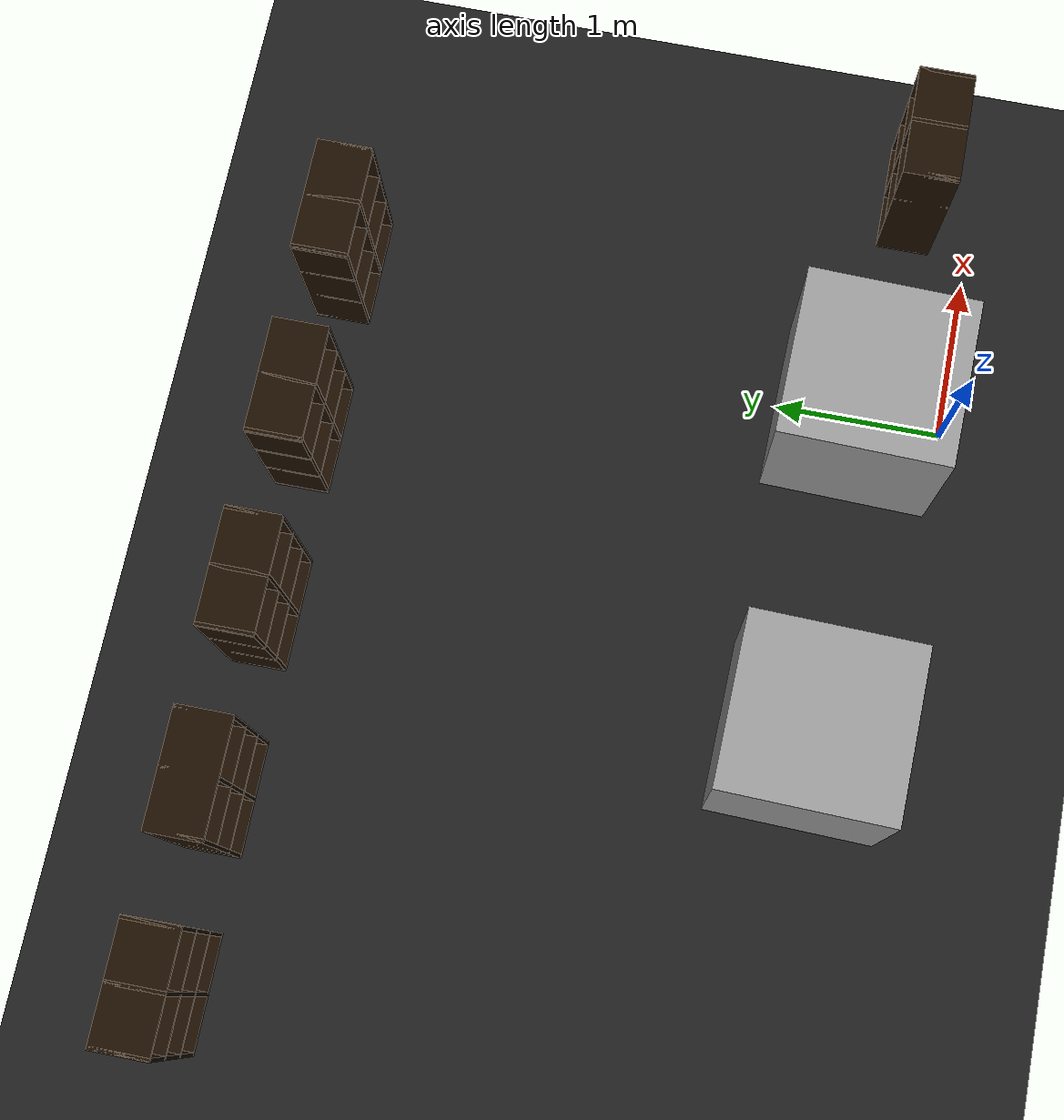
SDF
<sdf version="1.7">
 <world name="default">
  <model name="ground_plane">
   <static>1</static>
   <link name="link">
    <collision name="collision">
     <geometry><plane><normal>0 0 1</normal><size>100 100</size></plane></geometry>
     <surface><friction><ode><mu>100</mu><mu2>50</mu2></ode></friction></surface>
    </collision>
    <visual name="visual">
     <cast_shadows>0</cast_shadows>
     <geometry><plane><normal>0 0 1</normal><size>100 100</size></plane></geometry>
     <material>
      <script><uri>file://media/materials/scripts/gazebo.material</uri><name>Gazebo/BlackTransparent</name></script>
     </material>
    </visual>
   </link>
  </model>
  <model name="unit_box_17">
   <pose>-2.00747 0.514388 0.5 0 -0 -0.025074</pose>
   <link name="link">
    <inertial>
     <mass>1</mass>
     <inertia>
      <ixx>0.166667</ixx>
      <ixy>0</ixy>
      <ixz>0</ixz>
      <iyy>0.166667</iyy>
      <iyz>0</iyz>
      <izz>0.166667</izz>
     </inertia>
    </inertial>
    <collision name="collision"><geometry><box><size>1 1 1</size></box></geometry></collision>
    <visual name="visual">
     <geometry><box><size>1 1 1</size></box></geometry>
     <material>
      <script><name>Gazebo/Grey</name><uri>file://media/materials/scripts/gazebo.material</uri></script>
     </material>
    </visual>
   </link>
  </model>
  <model name="unit_box_18">
   <pose>-0.006792 0.511793 0.5 0 0 -0.025171</pose>
   <link name="link">
    <inertial>
     <mass>1</mass>
     <inertia>
      <ixx>0.166667</ixx>
      <ixy>0</ixy>
      <ixz>0</ixz>
      <iyy>0.166667</iyy>
      <iyz>0</iyz>
      <izz>0.166667</izz>
     </inertia>
    </inertial>
    <collision name="collision"><geometry><box><size>1 1 1</size></box></geometry></collision>
    <visual name="visual">
     <geometry><box><size>1 1 1</size></box></geometry>
     <material>
      <script><name>Gazebo/Grey</name><uri>file://media/materials/scripts/gazebo.material</uri></script>
     </material>
    </visual>
   </link>
  </model>
  <model name="6_Cube_StorageE_clone_20">
   <link name="Wall_0">
    <pose>0 0 0.01 0 -0 0</pose>
    <inertial>
     <mass>1.6201</mass>
     <inertia><ixx>0.0119</ixx><iyy>0.0631</iyy><izz>0.0513</izz><ixy>0</ixy><ixz>0</ixz><iyz>0</iyz></inertia>
    </inertial>
    <collision name="Wall_0_Collision"><geometry><box><size>0.616 0.296 0.02</size></box></geometry></collision>
    <visual name="Wall_0_Visual">
     <geometry><box><size>0.616 0.296 0.02</size></box></geometry>
     <material>
      <script><uri>file://media/materials/scripts/gazebo.material</uri><name>Gazebo/Grey</name></script>
      <ambient>0.105882 0.0509804 0 1</ambient>
     </material>
    </visual>
   </link>
   <joint name="0_2" type="fixed">
    <pose>-0.308 0 0 0 -0 0</pose>
    <parent>Wall_2</parent>
    <child>Wall_0</child>
    <axis><xyz>1 0 0</xyz><limit><lower>-1e+16</lower><upper>1e+16</upper></limit></axis>
   </joint>
   <joint name="0_12" type="fixed">
    <parent>Wall_12</parent>
    <child>Wall_0</child>
    <axis><xyz>0 0 1</xyz><limit><lower>-1e+16</lower><upper>1e+16</upper></limit></axis>
   </joint>
   <joint name="0_4" type="fixed">
    <pose>0.308 0 0 0 -0 0</pose>
    <parent>Wall_4</parent>
    <child>Wall_0</child>
    <axis><xyz>1 0 0</xyz><limit><lower>-1e+16</lower><upper>1e+16</upper></limit></axis>
   </joint>
   <link name="Wall_10">
    <pose>0 0 0.61 0 -0 0</pose>
    <inertial>
     <mass>1.6201</mass>
     <inertia><ixx>0.0119</ixx><iyy>0.0631</iyy><izz>0.0513</izz><ixy>0</ixy><ixz>0</ixz><iyz>0</iyz></inertia>
    </inertial>
    <collision name="Wall_10_Collision"><geometry><box><size>0.616 0.296 0.02</size></box></geometry></collision>
    <visual name="Wall_10_Visual">
     <geometry><box><size>0.616 0.296 0.02</size></box></geometry>
     <material>
      <script><uri>file://media/materials/scripts/gazebo.material</uri><name>Gazebo/Grey</name></script>
      <ambient>0.105882 0.0509804 0 1</ambient>
     </material>
    </visual>
   </link>
   <joint name="10_2" type="fixed">
    <pose>-0.308 0 0 0 -0 0</pose>
    <parent>Wall_2</parent>
    <child>Wall_10</child>
    <axis><xyz>1 0 0</xyz><limit><lower>-1e+16</lower><upper>1e+16</upper></limit></axis>
   </joint>
   <joint name="10_12" type="fixed">
    <parent>Wall_12</parent>
    <child>Wall_10</child>
    <axis><xyz>0 0 1</xyz><limit><lower>-1e+16</lower><upper>1e+16</upper></limit></axis>
   </joint>
   <joint name="10_4" type="fixed">
    <pose>0.308 0 0 0 -0 0</pose>
    <parent>Wall_4</parent>
    <child>Wall_10</child>
    <axis><xyz>1 0 0</xyz><limit><lower>-1e+16</lower><upper>1e+16</upper></limit></axis>
   </joint>
   <link name="Wall_12">
    <pose>0 0 0.4575 0 -0 0</pose>
    <inertial>
     <mass>2.4065</mass>
     <inertia><ixx>0.0177</ixx><iyy>0.1855</iyy><izz>0.168</izz><ixy>0</ixy><ixz>0</ixz><iyz>0</iyz></inertia>
    </inertial>
    <collision name="Wall_12_Collision"><geometry><box><size>0.02 0.296 0.915</size></box></geometry></collision>
    <visual name="Wall_12_Visual">
     <geometry><box><size>0.02 0.296 0.915</size></box></geometry>
     <material>
      <script><uri>file://media/materials/scripts/gazebo.material</uri><name>Gazebo/Grey</name></script>
      <ambient>0.105882 0.0509804 0 1</ambient>
     </material>
    </visual>
   </link>
   <link name="Wall_2">
    <pose>-0.298 0 0.4575 0 -0 0</pose>
    <inertial>
     <mass>2.4065</mass>
     <inertia><ixx>0.0177</ixx><iyy>0.1855</iyy><izz>0.168</izz><ixy>0</ixy><ixz>0</ixz><iyz>0</iyz></inertia>
    </inertial>
    <collision name="Wall_2_Collision"><geometry><box><size>0.02 0.296 0.915</size></box></geometry></collision>
    <visual name="Wall_2_Visual">
     <geometry><box><size>0.02 0.296 0.915</size></box></geometry>
     <material>
      <script><uri>file://media/materials/scripts/gazebo.material</uri><name>Gazebo/Grey</name></script>
      <ambient>0.105882 0.0509804 0 1</ambient>
     </material>
    </visual>
   </link>
   <link name="Wall_4">
    <pose>0.298 0 0.4575 0 -0 0</pose>
    <inertial>
     <mass>2.4065</mass>
     <inertia><ixx>0.0177</ixx><iyy>0.1855</iyy><izz>0.168</izz><ixy>0</ixy><ixz>0</ixz><iyz>0</iyz></inertia>
    </inertial>
    <collision name="Wall_4_Collision"><geometry><box><size>0.02 0.296 0.915</size></box></geometry></collision>
    <visual name="Wall_4_Visual">
     <geometry><box><size>0.02 0.296 0.915</size></box></geometry>
     <material>
      <script><uri>file://media/materials/scripts/gazebo.material</uri><name>Gazebo/Grey</name></script>
      <ambient>0.105882 0.0509804 0 1</ambient>
     </material>
    </visual>
   </link>
   <link name="Wall_6">
    <pose>0 0 0.905 0 -0 0</pose>
    <inertial>
     <mass>1.6201</mass>
     <inertia><ixx>0.0119</ixx><iyy>0.0631</iyy><izz>0.0513</izz><ixy>0</ixy><ixz>0</ixz><iyz>0</iyz></inertia>
    </inertial>
    <collision name="Wall_6_Collision"><geometry><box><size>0.616 0.296 0.02</size></box></geometry></collision>
    <visual name="Wall_6_Visual">
     <geometry><box><size>0.616 0.296 0.02</size></box></geometry>
     <material>
      <script><uri>file://media/materials/scripts/gazebo.material</uri><name>Gazebo/Grey</name></script>
      <ambient>0.105882 0.0509804 0 1</ambient>
     </material>
    </visual>
   </link>
   <joint name="6_2" type="fixed">
    <pose>-0.308 0 0 0 -0 0</pose>
    <parent>Wall_2</parent>
    <child>Wall_6</child>
    <axis><xyz>2 0 0</xyz><limit><lower>-1e+16</lower><upper>1e+16</upper></limit></axis>
   </joint>
   <joint name="6_12" type="fixed">
    <parent>Wall_12</parent>
    <child>Wall_6</child>
    <axis><xyz>0 0 1</xyz><limit><lower>-1e+16</lower><upper>1e+16</upper></limit></axis>
   </joint>
   <joint name="6_4" type="fixed">
    <pose>0.308 0 0 0 -0 0</pose>
    <parent>Wall_4</parent>
    <child>Wall_6</child>
    <axis><xyz>1 0 0</xyz><limit><lower>-1e+16</lower><upper>1e+16</upper></limit></axis>
   </joint>
   <link name="Wall_8">
    <pose>0 0 0.305 0 -0 0</pose>
    <inertial>
     <mass>1.6201</mass>
     <inertia><ixx>0.0119</ixx><iyy>0.0631</iyy><izz>0.0513</izz><ixy>0</ixy><ixz>0</ixz><iyz>0</iyz></inertia>
    </inertial>
    <collision name="Wall_8_Collision"><geometry><box><size>0.616 0.296 0.02</size></box></geometry></collision>
    <visual name="Wall_8_Visual">
     <geometry><box><size>0.616 0.296 0.02</size></box></geometry>
     <material>
      <script><uri>file://media/materials/scripts/gazebo.material</uri><name>Gazebo/Grey</name></script>
      <ambient>0.105882 0.0509804 0 1</ambient>
     </material>
    </visual>
   </link>
   <joint name="8_2" type="fixed">
    <pose>-0.308 0 0 0 -0 0</pose>
    <parent>Wall_2</parent>
    <child>Wall_8</child>
    <axis><xyz>1 0 0</xyz><limit><lower>-1e+16</lower><upper>1e+16</upper></limit></axis>
   </joint>
   <joint name="8_12" type="fixed">
    <parent>Wall_12</parent>
    <child>Wall_8</child>
    <axis><xyz>0 0 1</xyz><limit><lower>-1e+16</lower><upper>1e+16</upper></limit></axis>
   </joint>
   <joint name="8_4" type="fixed">
    <pose>0.308 0 0 0 -0 0</pose>
    <parent>Wall_4</parent>
    <child>Wall_8</child>
    <axis><xyz>1 0 0</xyz><limit><lower>-1e+16</lower><upper>1e+16</upper></limit></axis>
   </joint>
   <static>1</static>
   <pose>0 3.5 1.01 0 -0 0</pose>
  </model>
  <model name="6_Cube_StorageE_clone_21">
   <link name="Wall_0">
    <pose>0 0 0.01 0 -0 0</pose>
    <inertial>
     <mass>1.6201</mass>
     <inertia><ixx>0.0119</ixx><iyy>0.0631</iyy><izz>0.0513</izz><ixy>0</ixy><ixz>0</ixz><iyz>0</iyz></inertia>
    </inertial>
    <collision name="Wall_0_Collision"><geometry><box><size>0.616 0.296 0.02</size></box></geometry></collision>
    <visual name="Wall_0_Visual">
     <geometry><box><size>0.616 0.296 0.02</size></box></geometry>
     <material>
      <script><uri>file://media/materials/scripts/gazebo.material</uri><name>Gazebo/Grey</name></script>
      <ambient>0.105882 0.0509804 0 1</ambient>
     </material>
    </visual>
   </link>
   <joint name="0_2" type="fixed">
    <pose>-0.308 0 0 0 -0 0</pose>
    <parent>Wall_2</parent>
    <child>Wall_0</child>
    <axis><xyz>1 0 0</xyz><limit><lower>-1e+16</lower><upper>1e+16</upper></limit></axis>
   </joint>
   <joint name="0_12" type="fixed">
    <parent>Wall_12</parent>
    <child>Wall_0</child>
    <axis><xyz>0 0 1</xyz><limit><lower>-1e+16</lower><upper>1e+16</upper></limit></axis>
   </joint>
   <joint name="0_4" type="fixed">
    <pose>0.308 0 0 0 -0 0</pose>
    <parent>Wall_4</parent>
    <child>Wall_0</child>
    <axis><xyz>1 0 0</xyz><limit><lower>-1e+16</lower><upper>1e+16</upper></limit></axis>
   </joint>
   <link name="Wall_10">
    <pose>0 0 0.61 0 -0 0</pose>
    <inertial>
     <mass>1.6201</mass>
     <inertia><ixx>0.0119</ixx><iyy>0.0631</iyy><izz>0.0513</izz><ixy>0</ixy><ixz>0</ixz><iyz>0</iyz></inertia>
    </inertial>
    <collision name="Wall_10_Collision"><geometry><box><size>0.616 0.296 0.02</size></box></geometry></collision>
    <visual name="Wall_10_Visual">
     <geometry><box><size>0.616 0.296 0.02</size></box></geometry>
     <material>
      <script><uri>file://media/materials/scripts/gazebo.material</uri><name>Gazebo/Grey</name></script>
      <ambient>0.105882 0.0509804 0 1</ambient>
     </material>
    </visual>
   </link>
   <joint name="10_2" type="fixed">
    <pose>-0.308 0 0 0 -0 0</pose>
    <parent>Wall_2</parent>
    <child>Wall_10</child>
    <axis><xyz>1 0 0</xyz><limit><lower>-1e+16</lower><upper>1e+16</upper></limit></axis>
   </joint>
   <joint name="10_12" type="fixed">
    <parent>Wall_12</parent>
    <child>Wall_10</child>
    <axis><xyz>0 0 1</xyz><limit><lower>-1e+16</lower><upper>1e+16</upper></limit></axis>
   </joint>
   <joint name="10_4" type="fixed">
    <pose>0.308 0 0 0 -0 0</pose>
    <parent>Wall_4</parent>
    <child>Wall_10</child>
    <axis><xyz>1 0 0</xyz><limit><lower>-1e+16</lower><upper>1e+16</upper></limit></axis>
   </joint>
   <link name="Wall_12">
    <pose>0 0 0.4575 0 -0 0</pose>
    <inertial>
     <mass>2.4065</mass>
     <inertia><ixx>0.0177</ixx><iyy>0.1855</iyy><izz>0.168</izz><ixy>0</ixy><ixz>0</ixz><iyz>0</iyz></inertia>
    </inertial>
    <collision name="Wall_12_Collision"><geometry><box><size>0.02 0.296 0.915</size></box></geometry></collision>
    <visual name="Wall_12_Visual">
     <geometry><box><size>0.02 0.296 0.915</size></box></geometry>
     <material>
      <script><uri>file://media/materials/scripts/gazebo.material</uri><name>Gazebo/Grey</name></script>
      <ambient>0.105882 0.0509804 0 1</ambient>
     </material>
    </visual>
   </link>
   <link name="Wall_2">
    <pose>-0.298 0 0.4575 0 -0 0</pose>
    <inertial>
     <mass>2.4065</mass>
     <inertia><ixx>0.0177</ixx><iyy>0.1855</iyy><izz>0.168</izz><ixy>0</ixy><ixz>0</ixz><iyz>0</iyz></inertia>
    </inertial>
    <collision name="Wall_2_Collision"><geometry><box><size>0.02 0.296 0.915</size></box></geometry></collision>
    <visual name="Wall_2_Visual">
     <geometry><box><size>0.02 0.296 0.915</size></box></geometry>
     <material>
      <script><uri>file://media/materials/scripts/gazebo.material</uri><name>Gazebo/Grey</name></script>
      <ambient>0.105882 0.0509804 0 1</ambient>
     </material>
    </visual>
   </link>
   <link name="Wall_4">
    <pose>0.298 0 0.4575 0 -0 0</pose>
    <inertial>
     <mass>2.4065</mass>
     <inertia><ixx>0.0177</ixx><iyy>0.1855</iyy><izz>0.168</izz><ixy>0</ixy><ixz>0</ixz><iyz>0</iyz></inertia>
    </inertial>
    <collision name="Wall_4_Collision"><geometry><box><size>0.02 0.296 0.915</size></box></geometry></collision>
    <visual name="Wall_4_Visual">
     <geometry><box><size>0.02 0.296 0.915</size></box></geometry>
     <material>
      <script><uri>file://media/materials/scripts/gazebo.material</uri><name>Gazebo/Grey</name></script>
      <ambient>0.105882 0.0509804 0 1</ambient>
     </material>
    </visual>
   </link>
   <link name="Wall_6">
    <pose>0 0 0.905 0 -0 0</pose>
    <inertial>
     <mass>1.6201</mass>
     <inertia><ixx>0.0119</ixx><iyy>0.0631</iyy><izz>0.0513</izz><ixy>0</ixy><ixz>0</ixz><iyz>0</iyz></inertia>
    </inertial>
    <collision name="Wall_6_Collision"><geometry><box><size>0.616 0.296 0.02</size></box></geometry></collision>
    <visual name="Wall_6_Visual">
     <geometry><box><size>0.616 0.296 0.02</size></box></geometry>
     <material>
      <script><uri>file://media/materials/scripts/gazebo.material</uri><name>Gazebo/Grey</name></script>
      <ambient>0.105882 0.0509804 0 1</ambient>
     </material>
    </visual>
   </link>
   <joint name="6_2" type="fixed">
    <pose>-0.308 0 0 0 -0 0</pose>
    <parent>Wall_2</parent>
    <child>Wall_6</child>
    <axis><xyz>2 0 0</xyz><limit><lower>-1e+16</lower><upper>1e+16</upper></limit></axis>
   </joint>
   <joint name="6_12" type="fixed">
    <parent>Wall_12</parent>
    <child>Wall_6</child>
    <axis><xyz>0 0 1</xyz><limit><lower>-1e+16</lower><upper>1e+16</upper></limit></axis>
   </joint>
   <joint name="6_4" type="fixed">
    <pose>0.308 0 0 0 -0 0</pose>
    <parent>Wall_4</parent>
    <child>Wall_6</child>
    <axis><xyz>1 0 0</xyz><limit><lower>-1e+16</lower><upper>1e+16</upper></limit></axis>
   </joint>
   <link name="Wall_8">
    <pose>0 0 0.305 0 -0 0</pose>
    <inertial>
     <mass>1.6201</mass>
     <inertia><ixx>0.0119</ixx><iyy>0.0631</iyy><izz>0.0513</izz><ixy>0</ixy><ixz>0</ixz><iyz>0</iyz></inertia>
    </inertial>
    <collision name="Wall_8_Collision"><geometry><box><size>0.616 0.296 0.02</size></box></geometry></collision>
    <visual name="Wall_8_Visual">
     <geometry><box><size>0.616 0.296 0.02</size></box></geometry>
     <material>
      <script><uri>file://media/materials/scripts/gazebo.material</uri><name>Gazebo/Grey</name></script>
      <ambient>0.105882 0.0509804 0 1</ambient>
     </material>
    </visual>
   </link>
   <joint name="8_2" type="fixed">
    <pose>-0.308 0 0 0 -0 0</pose>
    <parent>Wall_2</parent>
    <child>Wall_8</child>
    <axis><xyz>1 0 0</xyz><limit><lower>-1e+16</lower><upper>1e+16</upper></limit></axis>
   </joint>
   <joint name="8_12" type="fixed">
    <parent>Wall_12</parent>
    <child>Wall_8</child>
    <axis><xyz>0 0 1</xyz><limit><lower>-1e+16</lower><upper>1e+16</upper></limit></axis>
   </joint>
   <joint name="8_4" type="fixed">
    <pose>0.308 0 0 0 -0 0</pose>
    <parent>Wall_4</parent>
    <child>Wall_8</child>
    <axis><xyz>1 0 0</xyz><limit><lower>-1e+16</lower><upper>1e+16</upper></limit></axis>
   </joint>
   <static>1</static>
   <pose>-1 3.5 1.01 0 -0 0</pose>
  </model>
  <model name="6_Cube_StorageE_clone_22">
   <link name="Wall_0">
    <pose>0 0 0.01 0 -0 0</pose>
    <inertial>
     <mass>1.6201</mass>
     <inertia><ixx>0.0119</ixx><iyy>0.0631</iyy><izz>0.0513</izz><ixy>0</ixy><ixz>0</ixz><iyz>0</iyz></inertia>
    </inertial>
    <collision name="Wall_0_Collision"><geometry><box><size>0.616 0.296 0.02</size></box></geometry></collision>
    <visual name="Wall_0_Visual">
     <geometry><box><size>0.616 0.296 0.02</size></box></geometry>
     <material>
      <script><uri>file://media/materials/scripts/gazebo.material</uri><name>Gazebo/Grey</name></script>
      <ambient>0.105882 0.0509804 0 1</ambient>
     </material>
    </visual>
   </link>
   <joint name="0_2" type="fixed">
    <pose>-0.308 0 0 0 -0 0</pose>
    <parent>Wall_2</parent>
    <child>Wall_0</child>
    <axis><xyz>1 0 0</xyz><limit><lower>-1e+16</lower><upper>1e+16</upper></limit></axis>
   </joint>
   <joint name="0_12" type="fixed">
    <parent>Wall_12</parent>
    <child>Wall_0</child>
    <axis><xyz>0 0 1</xyz><limit><lower>-1e+16</lower><upper>1e+16</upper></limit></axis>
   </joint>
   <joint name="0_4" type="fixed">
    <pose>0.308 0 0 0 -0 0</pose>
    <parent>Wall_4</parent>
    <child>Wall_0</child>
    <axis><xyz>1 0 0</xyz><limit><lower>-1e+16</lower><upper>1e+16</upper></limit></axis>
   </joint>
   <link name="Wall_10">
    <pose>0 0 0.61 0 -0 0</pose>
    <inertial>
     <mass>1.6201</mass>
     <inertia><ixx>0.0119</ixx><iyy>0.0631</iyy><izz>0.0513</izz><ixy>0</ixy><ixz>0</ixz><iyz>0</iyz></inertia>
    </inertial>
    <collision name="Wall_10_Collision"><geometry><box><size>0.616 0.296 0.02</size></box></geometry></collision>
    <visual name="Wall_10_Visual">
     <geometry><box><size>0.616 0.296 0.02</size></box></geometry>
     <material>
      <script><uri>file://media/materials/scripts/gazebo.material</uri><name>Gazebo/Grey</name></script>
      <ambient>0.105882 0.0509804 0 1</ambient>
     </material>
    </visual>
   </link>
   <joint name="10_2" type="fixed">
    <pose>-0.308 0 0 0 -0 0</pose>
    <parent>Wall_2</parent>
    <child>Wall_10</child>
    <axis><xyz>1 0 0</xyz><limit><lower>-1e+16</lower><upper>1e+16</upper></limit></axis>
   </joint>
   <joint name="10_12" type="fixed">
    <parent>Wall_12</parent>
    <child>Wall_10</child>
    <axis><xyz>0 0 1</xyz><limit><lower>-1e+16</lower><upper>1e+16</upper></limit></axis>
   </joint>
   <joint name="10_4" type="fixed">
    <pose>0.308 0 0 0 -0 0</pose>
    <parent>Wall_4</parent>
    <child>Wall_10</child>
    <axis><xyz>1 0 0</xyz><limit><lower>-1e+16</lower><upper>1e+16</upper></limit></axis>
   </joint>
   <link name="Wall_12">
    <pose>0 0 0.4575 0 -0 0</pose>
    <inertial>
     <mass>2.4065</mass>
     <inertia><ixx>0.0177</ixx><iyy>0.1855</iyy><izz>0.168</izz><ixy>0</ixy><ixz>0</ixz><iyz>0</iyz></inertia>
    </inertial>
    <collision name="Wall_12_Collision"><geometry><box><size>0.02 0.296 0.915</size></box></geometry></collision>
    <visual name="Wall_12_Visual">
     <geometry><box><size>0.02 0.296 0.915</size></box></geometry>
     <material>
      <script><uri>file://media/materials/scripts/gazebo.material</uri><name>Gazebo/Grey</name></script>
      <ambient>0.105882 0.0509804 0 1</ambient>
     </material>
    </visual>
   </link>
   <link name="Wall_2">
    <pose>-0.298 0 0.4575 0 -0 0</pose>
    <inertial>
     <mass>2.4065</mass>
     <inertia><ixx>0.0177</ixx><iyy>0.1855</iyy><izz>0.168</izz><ixy>0</ixy><ixz>0</ixz><iyz>0</iyz></inertia>
    </inertial>
    <collision name="Wall_2_Collision"><geometry><box><size>0.02 0.296 0.915</size></box></geometry></collision>
    <visual name="Wall_2_Visual">
     <geometry><box><size>0.02 0.296 0.915</size></box></geometry>
     <material>
      <script><uri>file://media/materials/scripts/gazebo.material</uri><name>Gazebo/Grey</name></script>
      <ambient>0.105882 0.0509804 0 1</ambient>
     </material>
    </visual>
   </link>
   <link name="Wall_4">
    <pose>0.298 0 0.4575 0 -0 0</pose>
    <inertial>
     <mass>2.4065</mass>
     <inertia><ixx>0.0177</ixx><iyy>0.1855</iyy><izz>0.168</izz><ixy>0</ixy><ixz>0</ixz><iyz>0</iyz></inertia>
    </inertial>
    <collision name="Wall_4_Collision"><geometry><box><size>0.02 0.296 0.915</size></box></geometry></collision>
    <visual name="Wall_4_Visual">
     <geometry><box><size>0.02 0.296 0.915</size></box></geometry>
     <material>
      <script><uri>file://media/materials/scripts/gazebo.material</uri><name>Gazebo/Grey</name></script>
      <ambient>0.105882 0.0509804 0 1</ambient>
     </material>
    </visual>
   </link>
   <link name="Wall_6">
    <pose>0 0 0.905 0 -0 0</pose>
    <inertial>
     <mass>1.6201</mass>
     <inertia><ixx>0.0119</ixx><iyy>0.0631</iyy><izz>0.0513</izz><ixy>0</ixy><ixz>0</ixz><iyz>0</iyz></inertia>
    </inertial>
    <collision name="Wall_6_Collision"><geometry><box><size>0.616 0.296 0.02</size></box></geometry></collision>
    <visual name="Wall_6_Visual">
     <geometry><box><size>0.616 0.296 0.02</size></box></geometry>
     <material>
      <script><uri>file://media/materials/scripts/gazebo.material</uri><name>Gazebo/Grey</name></script>
      <ambient>0.105882 0.0509804 0 1</ambient>
     </material>
    </visual>
   </link>
   <joint name="6_2" type="fixed">
    <pose>-0.308 0 0 0 -0 0</pose>
    <parent>Wall_2</parent>
    <child>Wall_6</child>
    <axis><xyz>2 0 0</xyz><limit><lower>-1e+16</lower><upper>1e+16</upper></limit></axis>
   </joint>
   <joint name="6_12" type="fixed">
    <parent>Wall_12</parent>
    <child>Wall_6</child>
    <axis><xyz>0 0 1</xyz><limit><lower>-1e+16</lower><upper>1e+16</upper></limit></axis>
   </joint>
   <joint name="6_4" type="fixed">
    <pose>0.308 0 0 0 -0 0</pose>
    <parent>Wall_4</parent>
    <child>Wall_6</child>
    <axis><xyz>1 0 0</xyz><limit><lower>-1e+16</lower><upper>1e+16</upper></limit></axis>
   </joint>
   <link name="Wall_8">
    <pose>0 0 0.305 0 -0 0</pose>
    <inertial>
     <mass>1.6201</mass>
     <inertia><ixx>0.0119</ixx><iyy>0.0631</iyy><izz>0.0513</izz><ixy>0</ixy><ixz>0</ixz><iyz>0</iyz></inertia>
    </inertial>
    <collision name="Wall_8_Collision"><geometry><box><size>0.616 0.296 0.02</size></box></geometry></collision>
    <visual name="Wall_8_Visual">
     <geometry><box><size>0.616 0.296 0.02</size></box></geometry>
     <material>
      <script><uri>file://media/materials/scripts/gazebo.material</uri><name>Gazebo/Grey</name></script>
      <ambient>0.105882 0.0509804 0 1</ambient>
     </material>
    </visual>
   </link>
   <joint name="8_2" type="fixed">
    <pose>-0.308 0 0 0 -0 0</pose>
    <parent>Wall_2</parent>
    <child>Wall_8</child>
    <axis><xyz>1 0 0</xyz><limit><lower>-1e+16</lower><upper>1e+16</upper></limit></axis>
   </joint>
   <joint name="8_12" type="fixed">
    <parent>Wall_12</parent>
    <child>Wall_8</child>
    <axis><xyz>0 0 1</xyz><limit><lower>-1e+16</lower><upper>1e+16</upper></limit></axis>
   </joint>
   <joint name="8_4" type="fixed">
    <pose>0.308 0 0 0 -0 0</pose>
    <parent>Wall_4</parent>
    <child>Wall_8</child>
    <axis><xyz>1 0 0</xyz><limit><lower>-1e+16</lower><upper>1e+16</upper></limit></axis>
   </joint>
   <static>1</static>
   <pose>-2 3.5 1.01 0 -0 0</pose>
  </model>
  <model name="6_Cube_StorageE_clone_23">
   <link name="Wall_0">
    <pose>0 0 0.01 0 -0 0</pose>
    <inertial>
     <mass>1.6201</mass>
     <inertia><ixx>0.0119</ixx><iyy>0.0631</iyy><izz>0.0513</izz><ixy>0</ixy><ixz>0</ixz><iyz>0</iyz></inertia>
    </inertial>
    <collision name="Wall_0_Collision"><geometry><box><size>0.616 0.296 0.02</size></box></geometry></collision>
    <visual name="Wall_0_Visual">
     <geometry><box><size>0.616 0.296 0.02</size></box></geometry>
     <material>
      <script><uri>file://media/materials/scripts/gazebo.material</uri><name>Gazebo/Grey</name></script>
      <ambient>0.105882 0.0509804 0 1</ambient>
     </material>
    </visual>
   </link>
   <joint name="0_2" type="fixed">
    <pose>-0.308 0 0 0 -0 0</pose>
    <parent>Wall_2</parent>
    <child>Wall_0</child>
    <axis><xyz>1 0 0</xyz><limit><lower>-1e+16</lower><upper>1e+16</upper></limit></axis>
   </joint>
   <joint name="0_12" type="fixed">
    <parent>Wall_12</parent>
    <child>Wall_0</child>
    <axis><xyz>0 0 1</xyz><limit><lower>-1e+16</lower><upper>1e+16</upper></limit></axis>
   </joint>
   <joint name="0_4" type="fixed">
    <pose>0.308 0 0 0 -0 0</pose>
    <parent>Wall_4</parent>
    <child>Wall_0</child>
    <axis><xyz>1 0 0</xyz><limit><lower>-1e+16</lower><upper>1e+16</upper></limit></axis>
   </joint>
   <link name="Wall_10">
    <pose>0 0 0.61 0 -0 0</pose>
    <inertial>
     <mass>1.6201</mass>
     <inertia><ixx>0.0119</ixx><iyy>0.0631</iyy><izz>0.0513</izz><ixy>0</ixy><ixz>0</ixz><iyz>0</iyz></inertia>
    </inertial>
    <collision name="Wall_10_Collision"><geometry><box><size>0.616 0.296 0.02</size></box></geometry></collision>
    <visual name="Wall_10_Visual">
     <geometry><box><size>0.616 0.296 0.02</size></box></geometry>
     <material>
      <script><uri>file://media/materials/scripts/gazebo.material</uri><name>Gazebo/Grey</name></script>
      <ambient>0.105882 0.0509804 0 1</ambient>
     </material>
    </visual>
   </link>
   <joint name="10_2" type="fixed">
    <pose>-0.308 0 0 0 -0 0</pose>
    <parent>Wall_2</parent>
    <child>Wall_10</child>
    <axis><xyz>1 0 0</xyz><limit><lower>-1e+16</lower><upper>1e+16</upper></limit></axis>
   </joint>
   <joint name="10_12" type="fixed">
    <parent>Wall_12</parent>
    <child>Wall_10</child>
    <axis><xyz>0 0 1</xyz><limit><lower>-1e+16</lower><upper>1e+16</upper></limit></axis>
   </joint>
   <joint name="10_4" type="fixed">
    <pose>0.308 0 0 0 -0 0</pose>
    <parent>Wall_4</parent>
    <child>Wall_10</child>
    <axis><xyz>1 0 0</xyz><limit><lower>-1e+16</lower><upper>1e+16</upper></limit></axis>
   </joint>
   <link name="Wall_12">
    <pose>0 0 0.4575 0 -0 0</pose>
    <inertial>
     <mass>2.4065</mass>
     <inertia><ixx>0.0177</ixx><iyy>0.1855</iyy><izz>0.168</izz><ixy>0</ixy><ixz>0</ixz><iyz>0</iyz></inertia>
    </inertial>
    <collision name="Wall_12_Collision"><geometry><box><size>0.02 0.296 0.915</size></box></geometry></collision>
    <visual name="Wall_12_Visual">
     <geometry><box><size>0.02 0.296 0.915</size></box></geometry>
     <material>
      <script><uri>file://media/materials/scripts/gazebo.material</uri><name>Gazebo/Grey</name></script>
      <ambient>0.105882 0.0509804 0 1</ambient>
     </material>
    </visual>
   </link>
   <link name="Wall_2">
    <pose>-0.298 0 0.4575 0 -0 0</pose>
    <inertial>
     <mass>2.4065</mass>
     <inertia><ixx>0.0177</ixx><iyy>0.1855</iyy><izz>0.168</izz><ixy>0</ixy><ixz>0</ixz><iyz>0</iyz></inertia>
    </inertial>
    <collision name="Wall_2_Collision"><geometry><box><size>0.02 0.296 0.915</size></box></geometry></collision>
    <visual name="Wall_2_Visual">
     <geometry><box><size>0.02 0.296 0.915</size></box></geometry>
     <material>
      <script><uri>file://media/materials/scripts/gazebo.material</uri><name>Gazebo/Grey</name></script>
      <ambient>0.105882 0.0509804 0 1</ambient>
     </material>
    </visual>
   </link>
   <link name="Wall_4">
    <pose>0.298 0 0.4575 0 -0 0</pose>
    <inertial>
     <mass>2.4065</mass>
     <inertia><ixx>0.0177</ixx><iyy>0.1855</iyy><izz>0.168</izz><ixy>0</ixy><ixz>0</ixz><iyz>0</iyz></inertia>
    </inertial>
    <collision name="Wall_4_Collision"><geometry><box><size>0.02 0.296 0.915</size></box></geometry></collision>
    <visual name="Wall_4_Visual">
     <geometry><box><size>0.02 0.296 0.915</size></box></geometry>
     <material>
      <script><uri>file://media/materials/scripts/gazebo.material</uri><name>Gazebo/Grey</name></script>
      <ambient>0.105882 0.0509804 0 1</ambient>
     </material>
    </visual>
   </link>
   <link name="Wall_6">
    <pose>0 0 0.905 0 -0 0</pose>
    <inertial>
     <mass>1.6201</mass>
     <inertia><ixx>0.0119</ixx><iyy>0.0631</iyy><izz>0.0513</izz><ixy>0</ixy><ixz>0</ixz><iyz>0</iyz></inertia>
    </inertial>
    <collision name="Wall_6_Collision"><geometry><box><size>0.616 0.296 0.02</size></box></geometry></collision>
    <visual name="Wall_6_Visual">
     <geometry><box><size>0.616 0.296 0.02</size></box></geometry>
     <material>
      <script><uri>file://media/materials/scripts/gazebo.material</uri><name>Gazebo/Grey</name></script>
      <ambient>0.105882 0.0509804 0 1</ambient>
     </material>
    </visual>
   </link>
   <joint name="6_2" type="fixed">
    <pose>-0.308 0 0 0 -0 0</pose>
    <parent>Wall_2</parent>
    <child>Wall_6</child>
    <axis><xyz>2 0 0</xyz><limit><lower>-1e+16</lower><upper>1e+16</upper></limit></axis>
   </joint>
   <joint name="6_12" type="fixed">
    <parent>Wall_12</parent>
    <child>Wall_6</child>
    <axis><xyz>0 0 1</xyz><limit><lower>-1e+16</lower><upper>1e+16</upper></limit></axis>
   </joint>
   <joint name="6_4" type="fixed">
    <pose>0.308 0 0 0 -0 0</pose>
    <parent>Wall_4</parent>
    <child>Wall_6</child>
    <axis><xyz>1 0 0</xyz><limit><lower>-1e+16</lower><upper>1e+16</upper></limit></axis>
   </joint>
   <link name="Wall_8">
    <pose>0 0 0.305 0 -0 0</pose>
    <inertial>
     <mass>1.6201</mass>
     <inertia><ixx>0.0119</ixx><iyy>0.0631</iyy><izz>0.0513</izz><ixy>0</ixy><ixz>0</ixz><iyz>0</iyz></inertia>
    </inertial>
    <collision name="Wall_8_Collision"><geometry><box><size>0.616 0.296 0.02</size></box></geometry></collision>
    <visual name="Wall_8_Visual">
     <geometry><box><size>0.616 0.296 0.02</size></box></geometry>
     <material>
      <script><uri>file://media/materials/scripts/gazebo.material</uri><name>Gazebo/Grey</name></script>
      <ambient>0.105882 0.0509804 0 1</ambient>
     </material>
    </visual>
   </link>
   <joint name="8_2" type="fixed">
    <pose>-0.308 0 0 0 -0 0</pose>
    <parent>Wall_2</parent>
    <child>Wall_8</child>
    <axis><xyz>1 0 0</xyz><limit><lower>-1e+16</lower><upper>1e+16</upper></limit></axis>
   </joint>
   <joint name="8_12" type="fixed">
    <parent>Wall_12</parent>
    <child>Wall_8</child>
    <axis><xyz>0 0 1</xyz><limit><lower>-1e+16</lower><upper>1e+16</upper></limit></axis>
   </joint>
   <joint name="8_4" type="fixed">
    <pose>0.308 0 0 0 -0 0</pose>
    <parent>Wall_4</parent>
    <child>Wall_8</child>
    <axis><xyz>1 0 0</xyz><limit><lower>-1e+16</lower><upper>1e+16</upper></limit></axis>
   </joint>
   <static>1</static>
   <pose>-3 3.5 1.01 0 -0 0</pose>
  </model>
  <model name="6_Cube_StorageE_clone_24">
   <link name="Wall_0">
    <pose>0 0 0.01 0 -0 0</pose>
    <inertial>
     <mass>1.6201</mass>
     <inertia><ixx>0.0119</ixx><iyy>0.0631</iyy><izz>0.0513</izz><ixy>0</ixy><ixz>0</ixz><iyz>0</iyz></inertia>
    </inertial>
    <collision name="Wall_0_Collision"><geometry><box><size>0.616 0.296 0.02</size></box></geometry></collision>
    <visual name="Wall_0_Visual">
     <geometry><box><size>0.616 0.296 0.02</size></box></geometry>
     <material>
      <script><uri>file://media/materials/scripts/gazebo.material</uri><name>Gazebo/Grey</name></script>
      <ambient>0.105882 0.0509804 0 1</ambient>
     </material>
    </visual>
   </link>
   <joint name="0_2" type="fixed">
    <pose>-0.308 0 0 0 -0 0</pose>
    <parent>Wall_2</parent>
    <child>Wall_0</child>
    <axis><xyz>1 0 0</xyz><limit><lower>-1e+16</lower><upper>1e+16</upper></limit></axis>
   </joint>
   <joint name="0_12" type="fixed">
    <parent>Wall_12</parent>
    <child>Wall_0</child>
    <axis><xyz>0 0 1</xyz><limit><lower>-1e+16</lower><upper>1e+16</upper></limit></axis>
   </joint>
   <joint name="0_4" type="fixed">
    <pose>0.308 0 0 0 -0 0</pose>
    <parent>Wall_4</parent>
    <child>Wall_0</child>
    <axis><xyz>1 0 0</xyz><limit><lower>-1e+16</lower><upper>1e+16</upper></limit></axis>
   </joint>
   <link name="Wall_10">
    <pose>0 0 0.61 0 -0 0</pose>
    <inertial>
     <mass>1.6201</mass>
     <inertia><ixx>0.0119</ixx><iyy>0.0631</iyy><izz>0.0513</izz><ixy>0</ixy><ixz>0</ixz><iyz>0</iyz></inertia>
    </inertial>
    <collision name="Wall_10_Collision"><geometry><box><size>0.616 0.296 0.02</size></box></geometry></collision>
    <visual name="Wall_10_Visual">
     <geometry><box><size>0.616 0.296 0.02</size></box></geometry>
     <material>
      <script><uri>file://media/materials/scripts/gazebo.material</uri><name>Gazebo/Grey</name></script>
      <ambient>0.105882 0.0509804 0 1</ambient>
     </material>
    </visual>
   </link>
   <joint name="10_2" type="fixed">
    <pose>-0.308 0 0 0 -0 0</pose>
    <parent>Wall_2</parent>
    <child>Wall_10</child>
    <axis><xyz>1 0 0</xyz><limit><lower>-1e+16</lower><upper>1e+16</upper></limit></axis>
   </joint>
   <joint name="10_12" type="fixed">
    <parent>Wall_12</parent>
    <child>Wall_10</child>
    <axis><xyz>0 0 1</xyz><limit><lower>-1e+16</lower><upper>1e+16</upper></limit></axis>
   </joint>
   <joint name="10_4" type="fixed">
    <pose>0.308 0 0 0 -0 0</pose>
    <parent>Wall_4</parent>
    <child>Wall_10</child>
    <axis><xyz>1 0 0</xyz><limit><lower>-1e+16</lower><upper>1e+16</upper></limit></axis>
   </joint>
   <link name="Wall_12">
    <pose>0 0 0.4575 0 -0 0</pose>
    <inertial>
     <mass>2.4065</mass>
     <inertia><ixx>0.0177</ixx><iyy>0.1855</iyy><izz>0.168</izz><ixy>0</ixy><ixz>0</ixz><iyz>0</iyz></inertia>
    </inertial>
    <collision name="Wall_12_Collision"><geometry><box><size>0.02 0.296 0.915</size></box></geometry></collision>
    <visual name="Wall_12_Visual">
     <geometry><box><size>0.02 0.296 0.915</size></box></geometry>
     <material>
      <script><uri>file://media/materials/scripts/gazebo.material</uri><name>Gazebo/Grey</name></script>
      <ambient>0.105882 0.0509804 0 1</ambient>
     </material>
    </visual>
   </link>
   <link name="Wall_2">
    <pose>-0.298 0 0.4575 0 -0 0</pose>
    <inertial>
     <mass>2.4065</mass>
     <inertia><ixx>0.0177</ixx><iyy>0.1855</iyy><izz>0.168</izz><ixy>0</ixy><ixz>0</ixz><iyz>0</iyz></inertia>
    </inertial>
    <collision name="Wall_2_Collision"><geometry><box><size>0.02 0.296 0.915</size></box></geometry></collision>
    <visual name="Wall_2_Visual">
     <geometry><box><size>0.02 0.296 0.915</size></box></geometry>
     <material>
      <script><uri>file://media/materials/scripts/gazebo.material</uri><name>Gazebo/Grey</name></script>
      <ambient>0.105882 0.0509804 0 1</ambient>
     </material>
    </visual>
   </link>
   <link name="Wall_4">
    <pose>0.298 0 0.4575 0 -0 0</pose>
    <inertial>
     <mass>2.4065</mass>
     <inertia><ixx>0.0177</ixx><iyy>0.1855</iyy><izz>0.168</izz><ixy>0</ixy><ixz>0</ixz><iyz>0</iyz></inertia>
    </inertial>
    <collision name="Wall_4_Collision"><geometry><box><size>0.02 0.296 0.915</size></box></geometry></collision>
    <visual name="Wall_4_Visual">
     <geometry><box><size>0.02 0.296 0.915</size></box></geometry>
     <material>
      <script><uri>file://media/materials/scripts/gazebo.material</uri><name>Gazebo/Grey</name></script>
      <ambient>0.105882 0.0509804 0 1</ambient>
     </material>
    </visual>
   </link>
   <link name="Wall_6">
    <pose>0 0 0.905 0 -0 0</pose>
    <inertial>
     <mass>1.6201</mass>
     <inertia><ixx>0.0119</ixx><iyy>0.0631</iyy><izz>0.0513</izz><ixy>0</ixy><ixz>0</ixz><iyz>0</iyz></inertia>
    </inertial>
    <collision name="Wall_6_Collision"><geometry><box><size>0.616 0.296 0.02</size></box></geometry></collision>
    <visual name="Wall_6_Visual">
     <geometry><box><size>0.616 0.296 0.02</size></box></geometry>
     <material>
      <script><uri>file://media/materials/scripts/gazebo.material</uri><name>Gazebo/Grey</name></script>
      <ambient>0.105882 0.0509804 0 1</ambient>
     </material>
    </visual>
   </link>
   <joint name="6_2" type="fixed">
    <pose>-0.308 0 0 0 -0 0</pose>
    <parent>Wall_2</parent>
    <child>Wall_6</child>
    <axis><xyz>2 0 0</xyz><limit><lower>-1e+16</lower><upper>1e+16</upper></limit></axis>
   </joint>
   <joint name="6_12" type="fixed">
    <parent>Wall_12</parent>
    <child>Wall_6</child>
    <axis><xyz>0 0 1</xyz><limit><lower>-1e+16</lower><upper>1e+16</upper></limit></axis>
   </joint>
   <joint name="6_4" type="fixed">
    <pose>0.308 0 0 0 -0 0</pose>
    <parent>Wall_4</parent>
    <child>Wall_6</child>
    <axis><xyz>1 0 0</xyz><limit><lower>-1e+16</lower><upper>1e+16</upper></limit></axis>
   </joint>
   <link name="Wall_8">
    <pose>0 0 0.305 0 -0 0</pose>
    <inertial>
     <mass>1.6201</mass>
     <inertia><ixx>0.0119</ixx><iyy>0.0631</iyy><izz>0.0513</izz><ixy>0</ixy><ixz>0</ixz><iyz>0</iyz></inertia>
    </inertial>
    <collision name="Wall_8_Collision"><geometry><box><size>0.616 0.296 0.02</size></box></geometry></collision>
    <visual name="Wall_8_Visual">
     <geometry><box><size>0.616 0.296 0.02</size></box></geometry>
     <material>
      <script><uri>file://media/materials/scripts/gazebo.material</uri><name>Gazebo/Grey</name></script>
      <ambient>0.105882 0.0509804 0 1</ambient>
     </material>
    </visual>
   </link>
   <joint name="8_2" type="fixed">
    <pose>-0.308 0 0 0 -0 0</pose>
    <parent>Wall_2</parent>
    <child>Wall_8</child>
    <axis><xyz>1 0 0</xyz><limit><lower>-1e+16</lower><upper>1e+16</upper></limit></axis>
   </joint>
   <joint name="8_12" type="fixed">
    <parent>Wall_12</parent>
    <child>Wall_8</child>
    <axis><xyz>0 0 1</xyz><limit><lower>-1e+16</lower><upper>1e+16</upper></limit></axis>
   </joint>
   <joint name="8_4" type="fixed">
    <pose>0.308 0 0 0 -0 0</pose>
    <parent>Wall_4</parent>
    <child>Wall_8</child>
    <axis><xyz>1 0 0</xyz><limit><lower>-1e+16</lower><upper>1e+16</upper></limit></axis>
   </joint>
   <static>1</static>
   <pose>-4 3.5 1.01 0 -0 0</pose>
  </model>
  <model name="6_Cube_StorageE_clone_36">
   <link name="Wall_0">
    <pose>0 0 0.01 0 -0 0</pose>
    <inertial>
     <mass>1.6201</mass>
     <inertia><ixx>0.0119</ixx><iyy>0.0631</iyy><izz>0.0513</izz><ixy>0</ixy><ixz>0</ixz><iyz>0</iyz></inertia>
    </inertial>
    <collision name="Wall_0_Collision"><geometry><box><size>0.616 0.296 0.02</size></box></geometry></collision>
    <visual name="Wall_0_Visual">
     <geometry><box><size>0.616 0.296 0.02</size></box></geometry>
     <material>
      <script><uri>file://media/materials/scripts/gazebo.material</uri><name>Gazebo/Grey</name></script>
      <ambient>0.105882 0.0509804 0 1</ambient>
     </material>
    </visual>
   </link>
   <joint name="0_2" type="fixed">
    <pose>-0.308 0 0 0 -0 0</pose>
    <parent>Wall_2</parent>
    <child>Wall_0</child>
    <axis><xyz>1 0 0</xyz><limit><lower>-1e+16</lower><upper>1e+16</upper></limit></axis>
   </joint>
   <joint name="0_12" type="fixed">
    <parent>Wall_12</parent>
    <child>Wall_0</child>
    <axis><xyz>0 0 1</xyz><limit><lower>-1e+16</lower><upper>1e+16</upper></limit></axis>
   </joint>
   <joint name="0_4" type="fixed">
    <pose>0.308 0 0 0 -0 0</pose>
    <parent>Wall_4</parent>
    <child>Wall_0</child>
    <axis><xyz>1 0 0</xyz><limit><lower>-1e+16</lower><upper>1e+16</upper></limit></axis>
   </joint>
   <link name="Wall_10">
    <pose>0 0 0.61 0 -0 0</pose>
    <inertial>
     <mass>1.6201</mass>
     <inertia><ixx>0.0119</ixx><iyy>0.0631</iyy><izz>0.0513</izz><ixy>0</ixy><ixz>0</ixz><iyz>0</iyz></inertia>
    </inertial>
    <collision name="Wall_10_Collision"><geometry><box><size>0.616 0.296 0.02</size></box></geometry></collision>
    <visual name="Wall_10_Visual">
     <geometry><box><size>0.616 0.296 0.02</size></box></geometry>
     <material>
      <script><uri>file://media/materials/scripts/gazebo.material</uri><name>Gazebo/Grey</name></script>
      <ambient>0.105882 0.0509804 0 1</ambient>
     </material>
    </visual>
   </link>
   <joint name="10_2" type="fixed">
    <pose>-0.308 0 0 0 -0 0</pose>
    <parent>Wall_2</parent>
    <child>Wall_10</child>
    <axis><xyz>1 0 0</xyz><limit><lower>-1e+16</lower><upper>1e+16</upper></limit></axis>
   </joint>
   <joint name="10_12" type="fixed">
    <parent>Wall_12</parent>
    <child>Wall_10</child>
    <axis><xyz>0 0 1</xyz><limit><lower>-1e+16</lower><upper>1e+16</upper></limit></axis>
   </joint>
   <joint name="10_4" type="fixed">
    <pose>0.308 0 0 0 -0 0</pose>
    <parent>Wall_4</parent>
    <child>Wall_10</child>
    <axis><xyz>1 0 0</xyz><limit><lower>-1e+16</lower><upper>1e+16</upper></limit></axis>
   </joint>
   <link name="Wall_12">
    <pose>0 0 0.4575 0 -0 0</pose>
    <inertial>
     <mass>2.4065</mass>
     <inertia><ixx>0.0177</ixx><iyy>0.1855</iyy><izz>0.168</izz><ixy>0</ixy><ixz>0</ixz><iyz>0</iyz></inertia>
    </inertial>
    <collision name="Wall_12_Collision"><geometry><box><size>0.02 0.296 0.915</size></box></geometry></collision>
    <visual name="Wall_12_Visual">
     <geometry><box><size>0.02 0.296 0.915</size></box></geometry>
     <material>
      <script><uri>file://media/materials/scripts/gazebo.material</uri><name>Gazebo/Grey</name></script>
      <ambient>0.105882 0.0509804 0 1</ambient>
     </material>
    </visual>
   </link>
   <link name="Wall_2">
    <pose>-0.298 0 0.4575 0 -0 0</pose>
    <inertial>
     <mass>2.4065</mass>
     <inertia><ixx>0.0177</ixx><iyy>0.1855</iyy><izz>0.168</izz><ixy>0</ixy><ixz>0</ixz><iyz>0</iyz></inertia>
    </inertial>
    <collision name="Wall_2_Collision"><geometry><box><size>0.02 0.296 0.915</size></box></geometry></collision>
    <visual name="Wall_2_Visual">
     <geometry><box><size>0.02 0.296 0.915</size></box></geometry>
     <material>
      <script><uri>file://media/materials/scripts/gazebo.material</uri><name>Gazebo/Grey</name></script>
      <ambient>0.105882 0.0509804 0 1</ambient>
     </material>
    </visual>
   </link>
   <link name="Wall_4">
    <pose>0.298 0 0.4575 0 -0 0</pose>
    <inertial>
     <mass>2.4065</mass>
     <inertia><ixx>0.0177</ixx><iyy>0.1855</iyy><izz>0.168</izz><ixy>0</ixy><ixz>0</ixz><iyz>0</iyz></inertia>
    </inertial>
    <collision name="Wall_4_Collision"><geometry><box><size>0.02 0.296 0.915</size></box></geometry></collision>
    <visual name="Wall_4_Visual">
     <geometry><box><size>0.02 0.296 0.915</size></box></geometry>
     <material>
      <script><uri>file://media/materials/scripts/gazebo.material</uri><name>Gazebo/Grey</name></script>
      <ambient>0.105882 0.0509804 0 1</ambient>
     </material>
    </visual>
   </link>
   <link name="Wall_6">
    <pose>0 0 0.905 0 -0 0</pose>
    <inertial>
     <mass>1.6201</mass>
     <inertia><ixx>0.0119</ixx><iyy>0.0631</iyy><izz>0.0513</izz><ixy>0</ixy><ixz>0</ixz><iyz>0</iyz></inertia>
    </inertial>
    <collision name="Wall_6_Collision"><geometry><box><size>0.616 0.296 0.02</size></box></geometry></collision>
    <visual name="Wall_6_Visual">
     <geometry><box><size>0.616 0.296 0.02</size></box></geometry>
     <material>
      <script><uri>file://media/materials/scripts/gazebo.material</uri><name>Gazebo/Grey</name></script>
      <ambient>0.105882 0.0509804 0 1</ambient>
     </material>
    </visual>
   </link>
   <joint name="6_2" type="fixed">
    <pose>-0.308 0 0 0 -0 0</pose>
    <parent>Wall_2</parent>
    <child>Wall_6</child>
    <axis><xyz>2 0 0</xyz><limit><lower>-1e+16</lower><upper>1e+16</upper></limit></axis>
   </joint>
   <joint name="6_12" type="fixed">
    <parent>Wall_12</parent>
    <child>Wall_6</child>
    <axis><xyz>0 0 1</xyz><limit><lower>-1e+16</lower><upper>1e+16</upper></limit></axis>
   </joint>
   <joint name="6_4" type="fixed">
    <pose>0.308 0 0 0 -0 0</pose>
    <parent>Wall_4</parent>
    <child>Wall_6</child>
    <axis><xyz>1 0 0</xyz><limit><lower>-1e+16</lower><upper>1e+16</upper></limit></axis>
   </joint>
   <link name="Wall_8">
    <pose>0 0 0.305 0 -0 0</pose>
    <inertial>
     <mass>1.6201</mass>
     <inertia><ixx>0.0119</ixx><iyy>0.0631</iyy><izz>0.0513</izz><ixy>0</ixy><ixz>0</ixz><iyz>0</iyz></inertia>
    </inertial>
    <collision name="Wall_8_Collision"><geometry><box><size>0.616 0.296 0.02</size></box></geometry></collision>
    <visual name="Wall_8_Visual">
     <geometry><box><size>0.616 0.296 0.02</size></box></geometry>
     <material>
      <script><uri>file://media/materials/scripts/gazebo.material</uri><name>Gazebo/Grey</name></script>
      <ambient>0.105882 0.0509804 0 1</ambient>
     </material>
    </visual>
   </link>
   <joint name="8_2" type="fixed">
    <pose>-0.308 0 0 0 -0 0</pose>
    <parent>Wall_2</parent>
    <child>Wall_8</child>
    <axis><xyz>1 0 0</xyz><limit><lower>-1e+16</lower><upper>1e+16</upper></limit></axis>
   </joint>
   <joint name="8_12" type="fixed">
    <parent>Wall_12</parent>
    <child>Wall_8</child>
    <axis><xyz>0 0 1</xyz><limit><lower>-1e+16</lower><upper>1e+16</upper></limit></axis>
   </joint>
   <joint name="8_4" type="fixed">
    <pose>0.308 0 0 0 -0 0</pose>
    <parent>Wall_4</parent>
    <child>Wall_8</child>
    <axis><xyz>1 0 0</xyz><limit><lower>-1e+16</lower><upper>1e+16</upper></limit></axis>
   </joint>
   <static>1</static>
   <pose>1 0.5 1.01 0 -0 0</pose>
  </model>
 </world>
</sdf>
